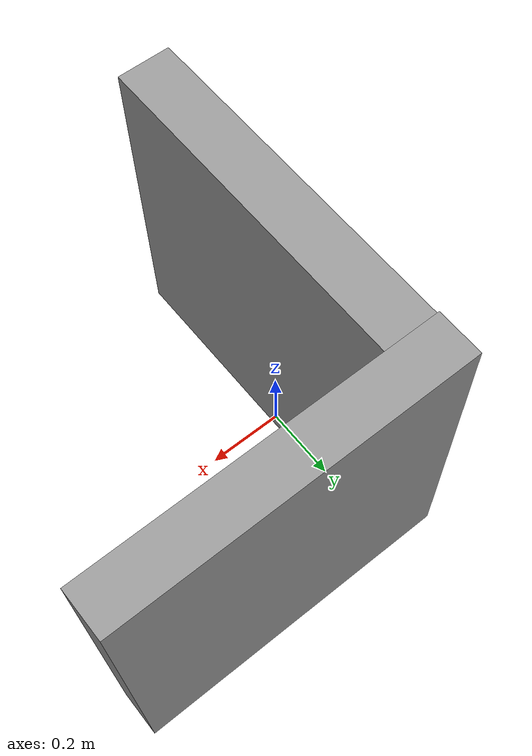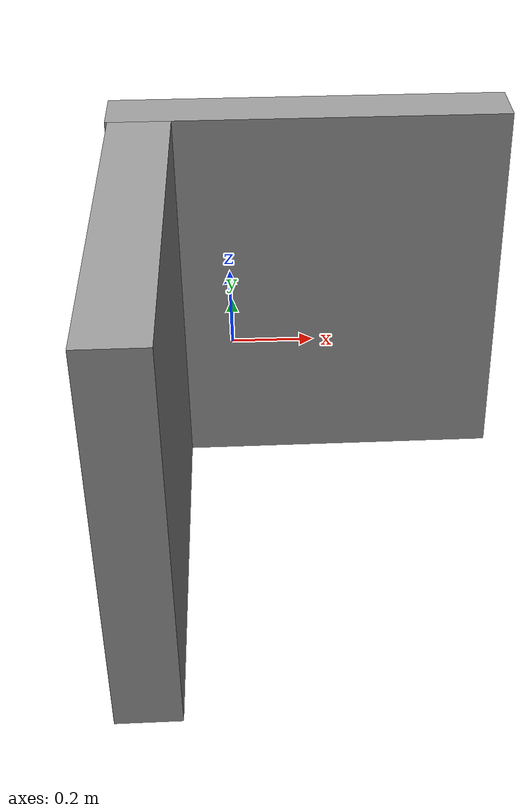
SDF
<?xml version='1.0'?>
<sdf version='1.7'>
  <model name='box_cover_test'>
    <link name='link_2'>
      <inertial>
        <mass>0.135476</mass>
        <inertia>
          <ixx>0.0114969</ixx>
          <ixy>0</ixy>
          <ixz>0</ixz>
          <iyy>0.0225794</iyy>
          <iyz>0</iyz>
          <izz>0.0114969</izz>
        </inertia>
        <pose>0 0 0 0 -0 0</pose>
      </inertial>
      <pose>0.207994 0.282607 0 0 -0 0</pose>
      <visual name='visual'>
        <pose>0 0 0 0 -0 0</pose>
        <geometry>
          <box>
            <size>1 0.135473 1</size>
          </box>
        </geometry>
        <material>
          <lighting>1</lighting>
          <script>
            <uri>file://media/materials/scripts/gazebo.material</uri>
            <name>Gazebo/Grey</name>
          </script>
          <shader type='pixel'/>
          <emissive>0 0 0 1</emissive>
        </material>
        <transparency>0</transparency>
        <cast_shadows>1</cast_shadows>
      </visual>
      <collision name='collision'>
        <laser_retro>0</laser_retro>
        <max_contacts>10</max_contacts>
        <pose>0 0 0 0 -0 0</pose>
        <geometry>
          <box>
            <size>1 0.135473 1</size>
          </box>
        </geometry>
        <surface>
          <friction>
            <ode>
              <mu>1</mu>
              <mu2>1</mu2>
              <fdir1>0 0 0</fdir1>
              <slip1>0</slip1>
              <slip2>0</slip2>
            </ode>
            <torsional>
              <coefficient>1</coefficient>
              <patch_radius>0</patch_radius>
              <surface_radius>0</surface_radius>
              <use_patch_radius>1</use_patch_radius>
              <ode>
                <slip>0</slip>
              </ode>
            </torsional>
          </friction>
          <bounce>
            <restitution_coefficient>0</restitution_coefficient>
            <threshold>1e+06</threshold>
          </bounce>
          <contact>
            <collide_without_contact>0</collide_without_contact>
            <collide_without_contact_bitmask>1</collide_without_contact_bitmask>
            <collide_bitmask>1</collide_bitmask>
            <ode>
              <soft_cfm>0</soft_cfm>
              <soft_erp>0.2</soft_erp>
              <kp>1e+13</kp>
              <kd>1</kd>
              <max_vel>0.01</max_vel>
              <min_depth>0</min_depth>
            </ode>
            <bullet>
              <split_impulse>1</split_impulse>
              <split_impulse_penetration_threshold>-0.01</split_impulse_penetration_threshold>
              <soft_cfm>0</soft_cfm>
              <soft_erp>0.2</soft_erp>
              <kp>1e+13</kp>
              <kd>1</kd>
            </bullet>
          </contact>
        </surface>
      </collision>
    </link>
    <link name='link_3'>
      <inertial>
        <mass>0.154787</mass>
        <inertia>
          <ixx>0.0257978</ixx>
          <ixy>0</ixy>
          <ixz>0</ixz>
          <iyy>0.0132079</iyy>
          <iyz>0</iyz>
          <izz>0.0132079</izz>
        </inertia>
        <pose>0 0 0 0 -0 0</pose>
      </inertial>
      <pose>-0.207996 -0.282697 0 0 -0 0</pose>
      <visual name='visual'>
        <pose>0 0 0 0 -0 0</pose>
        <geometry>
          <box>
            <size>0.154789 1 1</size>
          </box>
        </geometry>
        <material>
          <lighting>1</lighting>
          <script>
            <uri>file://media/materials/scripts/gazebo.material</uri>
            <name>Gazebo/Grey</name>
          </script>
          <shader type='pixel'/>
          <emissive>0 0 0 1</emissive>
        </material>
        <transparency>0</transparency>
        <cast_shadows>1</cast_shadows>
      </visual>
      <collision name='collision'>
        <laser_retro>0</laser_retro>
        <max_contacts>10</max_contacts>
        <pose>0 0 0 0 -0 0</pose>
        <geometry>
          <box>
            <size>0.154789 1 1</size>
          </box>
        </geometry>
        <surface>
          <friction>
            <ode>
              <mu>1</mu>
              <mu2>1</mu2>
              <fdir1>0 0 0</fdir1>
              <slip1>0</slip1>
              <slip2>0</slip2>
            </ode>
            <torsional>
              <coefficient>1</coefficient>
              <patch_radius>0</patch_radius>
              <surface_radius>0</surface_radius>
              <use_patch_radius>1</use_patch_radius>
              <ode>
                <slip>0</slip>
              </ode>
            </torsional>
          </friction>
          <bounce>
            <restitution_coefficient>0</restitution_coefficient>
            <threshold>1e+06</threshold>
          </bounce>
          <contact>
            <collide_without_contact>0</collide_without_contact>
            <collide_without_contact_bitmask>1</collide_without_contact_bitmask>
            <collide_bitmask>1</collide_bitmask>
            <ode>
              <soft_cfm>0</soft_cfm>
              <soft_erp>0.2</soft_erp>
              <kp>1e+13</kp>
              <kd>1</kd>
              <max_vel>0.01</max_vel>
              <min_depth>0</min_depth>
            </ode>
            <bullet>
              <split_impulse>1</split_impulse>
              <split_impulse_penetration_threshold>-0.01</split_impulse_penetration_threshold>
              <soft_cfm>0</soft_cfm>
              <soft_erp>0.2</soft_erp>
              <kp>1e+13</kp>
              <kd>1</kd>
            </bullet>
          </contact>
        </surface>
      </collision>
    </link>
    <joint name='link_2_JOINT_1' type='fixed'>
      <parent>link_2</parent>
      <child>link_3</child>
      <pose>0 0 0 0 -0 0</pose>
      <physics>
        <ode>
          <limit>
            <cfm>0</cfm>
            <erp>0.2</erp>
          </limit>
          <suspension>
            <cfm>0</cfm>
            <erp>0.2</erp>
          </suspension>
        </ode>
      </physics>
    </joint>
    <static>0</static>
    <allow_auto_disable>1</allow_auto_disable>
  </model>
</sdf>
